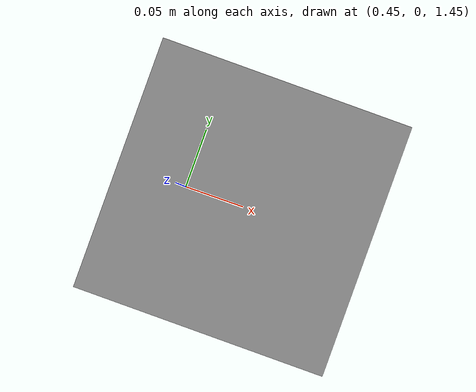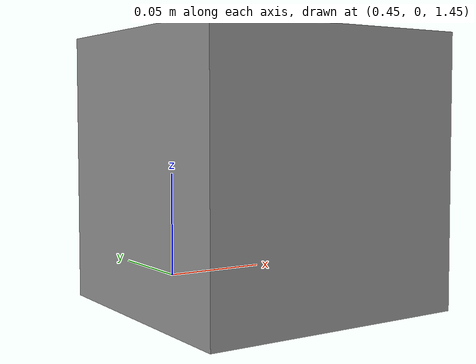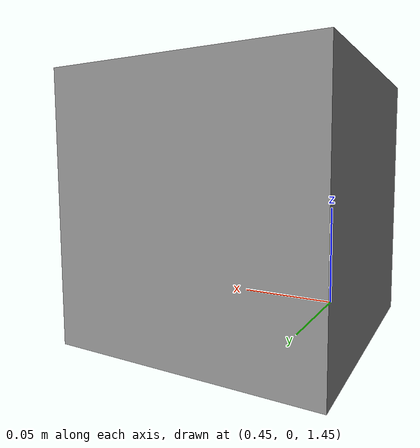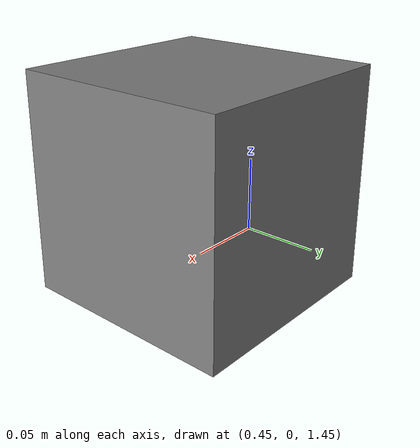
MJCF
<?xml version="1.0" encoding="utf-8"?>
<mujoco model="fanuc_lrmate_jaw">
    <compiler angle="radian" meshdir="robot_mesh/" coordinate="local"/>
    <option timestep="0.008" gravity="0 0 -10" />
    <size nconmax="100" njmax="500"/>

    <default>
        <geom friction=".5 .1 .1" conaffinity="1" condim="1" contype="1" margin="0.0005"/>
    </default>

    <worldbody>
        <body name='object_1'>
            <geom name='object_geom_1' type="box" pos="0.5 0.0 1.5" quat="1 0 0 0" size="0.07 0.07 0.07" density="100"/>
            <freejoint/>
        </body>

        <body name="floor" pos="0 0 -0.02">
            <geom size="2 2 0.02" density="0" rgba=".4 .6 .8 1" type="box"/>
        </body>

    </worldbody>

</mujoco>
